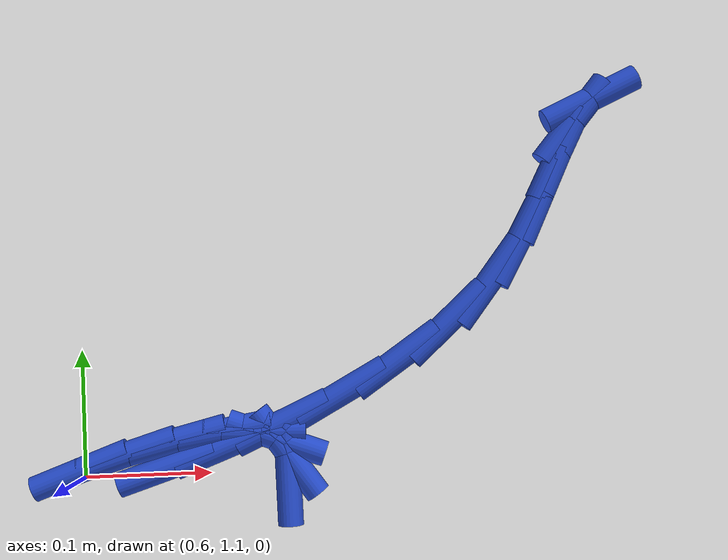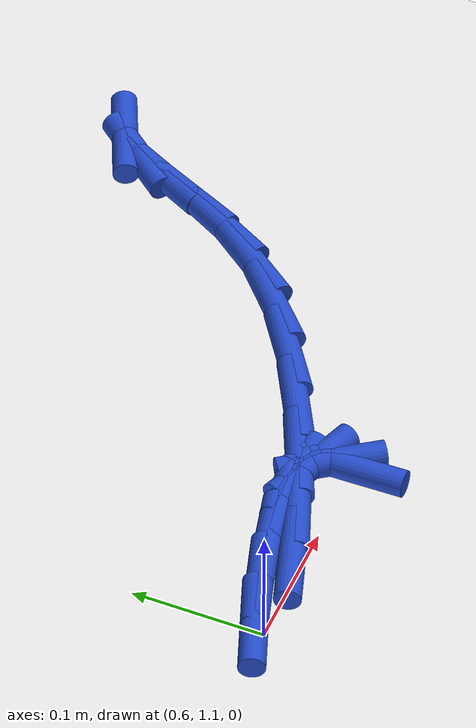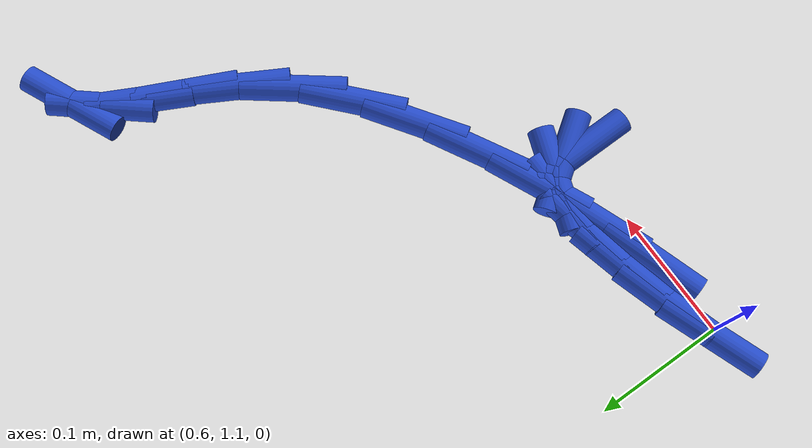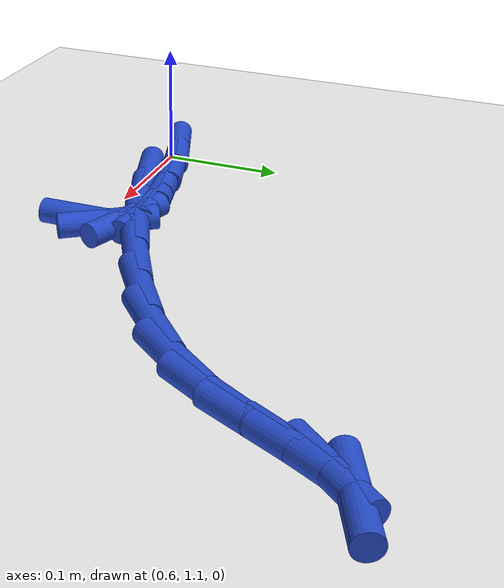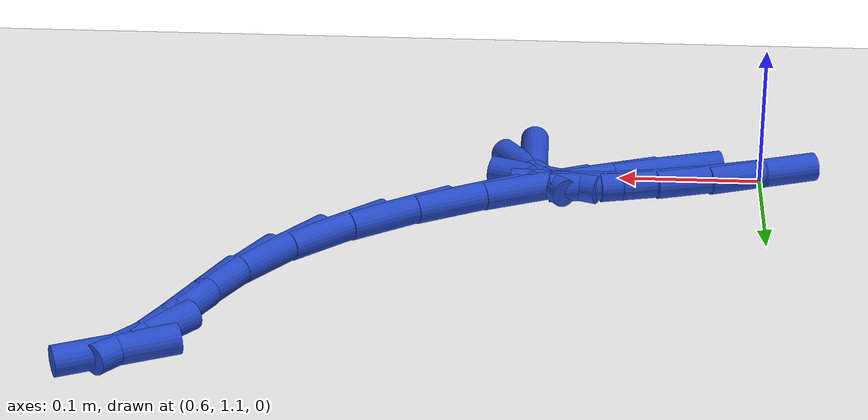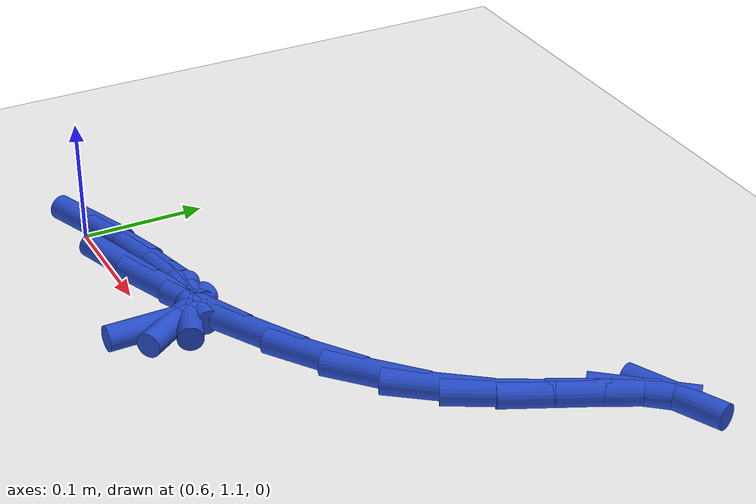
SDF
<sdf version="1.6">
 <world name="default">
  <model name="ground_plane">
   <static>1</static>
   <link name="link">
    <collision name="collision">
     <geometry><plane><normal>0 0 1</normal><size>100 100</size></plane></geometry>
     <surface><friction><ode><mu>100</mu><mu2>50</mu2></ode></friction></surface>
    </collision>
    <visual name="visual">
     <cast_shadows>0</cast_shadows>
     <geometry><plane><normal>0 0 1</normal><size>100 100</size></plane></geometry>
     <material>
      <script><uri>file://media/materials/scripts/gazebo.material</uri><name>Gazebo/WhiteGlow</name></script>
     </material>
    </visual>
   </link>
  </model>
  <model name="line">
   <link name="link_36">
    <pose>0.7609046552509291 1.0987387218680749 0.01 0 1.57 -1.5540514657367226</pose>
    <collision name="collision">
     <geometry><cylinder><radius>0.01</radius><length>0.08</length></cylinder></geometry>
    </collision>
    <visual name="visual">
     <material>
      <script><name>Gazebo/Blue</name><uri>file://media/materials/scripts/gazebo.material</uri></script>
     </material>
     <geometry><cylinder><radius>0.01</radius><length>0.08</length></cylinder></geometry>
    </visual>
   </link>
   <link name="link_37">
    <pose>0.760628027409588 1.1152573412404536 0.01 0 1.57 -0.9563449752880794</pose>
    <collision name="collision">
     <geometry><cylinder><radius>0.01</radius><length>0.08</length></cylinder></geometry>
    </collision>
    <visual name="visual">
     <material>
      <script><name>Gazebo/Blue</name><uri>file://media/materials/scripts/gazebo.material</uri></script>
     </material>
     <geometry><cylinder><radius>0.01</radius><length>0.08</length></cylinder></geometry>
    </visual>
   </link>
   <link name="link_38">
    <pose>0.7524356501726457 1.1268684231254376 0.01 0 1.57 -0.3530542364595933</pose>
    <collision name="collision">
     <geometry><cylinder><radius>0.01</radius><length>0.08</length></cylinder></geometry>
    </collision>
    <visual name="visual">
     <material>
      <script><name>Gazebo/Blue</name><uri>file://media/materials/scripts/gazebo.material</uri></script>
     </material>
     <geometry><cylinder><radius>0.01</radius><length>0.08</length></cylinder></geometry>
    </visual>
   </link>
   <link name="link_39">
    <pose>0.7356116678076605 1.1330679524387193 0.01 0 1.57 -0.010854746388954558</pose>
    <collision name="collision">
     <geometry><cylinder><radius>0.01</radius><length>0.08</length></cylinder></geometry>
    </collision>
    <visual name="visual">
     <material>
      <script><name>Gazebo/Blue</name><uri>file://media/materials/scripts/gazebo.material</uri></script>
     </material>
     <geometry><cylinder><radius>0.01</radius><length>0.08</length></cylinder></geometry>
    </visual>
   </link>
   <link name="link_40">
    <pose>0.7094405324332714 1.133352044633777 0.01 0 1.57 0.1583651510524637</pose>
    <collision name="collision">
     <geometry><cylinder><radius>0.01</radius><length>0.08</length></cylinder></geometry>
    </collision>
    <visual name="visual">
     <material>
      <script><name>Gazebo/Blue</name><uri>file://media/materials/scripts/gazebo.material</uri></script>
     </material>
     <geometry><cylinder><radius>0.01</radius><length>0.08</length></cylinder></geometry>
    </visual>
   </link>
   <link name="link_41">
    <pose>0.6745255048374678 1.1277760282832954 0.01 0 1.57 0.2416256211021858</pose>
    <collision name="collision">
     <geometry><cylinder><radius>0.01</radius><length>0.08</length></cylinder></geometry>
    </collision>
    <visual name="visual">
     <material>
      <script><name>Gazebo/Blue</name><uri>file://media/materials/scripts/gazebo.material</uri></script>
     </material>
     <geometry><cylinder><radius>0.01</radius><length>0.08</length></cylinder></geometry>
    </visual>
   </link>
   <link name="link_42">
    <pose>0.6358065200842399 1.118234107609792 0.01 0 1.57 0.29715572822820807</pose>
    <collision name="collision">
     <geometry><cylinder><radius>0.01</radius><length>0.08</length></cylinder></geometry>
    </collision>
    <visual name="visual">
     <material>
      <script><name>Gazebo/Blue</name><uri>file://media/materials/scripts/gazebo.material</uri></script>
     </material>
     <geometry><cylinder><radius>0.01</radius><length>0.08</length></cylinder></geometry>
    </visual>
   </link>
   <link name="link_43">
    <pose>0.5991135902482395 1.106997905299156 0.01 0 1.57 0.35405112781368203</pose>
    <collision name="collision">
     <geometry><cylinder><radius>0.01</radius><length>0.08</length></cylinder></geometry>
    </collision>
    <visual name="visual">
     <material>
      <script><name>Gazebo/Blue</name><uri>file://media/materials/scripts/gazebo.material</uri></script>
     </material>
     <geometry><cylinder><radius>0.01</radius><length>0.08</length></cylinder></geometry>
    </visual>
   </link>
   <link name="link_50">
    <pose>0.6663162509404124 1.1064791715887397 0.01 0 1.57 0.31459563817116315</pose>
    <collision name="collision">
     <geometry><cylinder><radius>0.01</radius><length>0.08</length></cylinder></geometry>
    </collision>
    <visual name="visual">
     <material>
      <script><name>Gazebo/Blue</name><uri>file://media/materials/scripts/gazebo.material</uri></script>
     </material>
     <geometry><cylinder><radius>0.01</radius><length>0.08</length></cylinder></geometry>
    </visual>
   </link>
   <link name="link_51">
    <pose>0.7108594166152474 1.1209736159879482 0.01 0 1.57 0.3656740829068888</pose>
    <collision name="collision">
     <geometry><cylinder><radius>0.01</radius><length>0.08</length></cylinder></geometry>
    </collision>
    <visual name="visual">
     <material>
      <script><name>Gazebo/Blue</name><uri>file://media/materials/scripts/gazebo.material</uri></script>
     </material>
     <geometry><cylinder><radius>0.01</radius><length>0.08</length></cylinder></geometry>
    </visual>
   </link>
   <link name="link_52">
    <pose>0.7576654518218182 1.138895401991948 0.01 0 1.57 0.425972506936103</pose>
    <collision name="collision">
     <geometry><cylinder><radius>0.01</radius><length>0.08</length></cylinder></geometry>
    </collision>
    <visual name="visual">
     <material>
      <script><name>Gazebo/Blue</name><uri>file://media/materials/scripts/gazebo.material</uri></script>
     </material>
     <geometry><cylinder><radius>0.01</radius><length>0.08</length></cylinder></geometry>
    </visual>
   </link>
   <link name="link_53">
    <pose>0.8045223606455906 1.1601569762612647 0.01 0 1.57 0.5016593800901276</pose>
    <collision name="collision">
     <geometry><cylinder><radius>0.01</radius><length>0.08</length></cylinder></geometry>
    </collision>
    <visual name="visual">
     <material>
      <script><name>Gazebo/Blue</name><uri>file://media/materials/scripts/gazebo.material</uri></script>
     </material>
     <geometry><cylinder><radius>0.01</radius><length>0.08</length></cylinder></geometry>
    </visual>
   </link>
   <link name="link_54">
    <pose>0.8492181471720317 1.1846707854564247 0.01 0 1.57 0.6015570599321184</pose>
    <collision name="collision">
     <geometry><cylinder><radius>0.01</radius><length>0.08</length></cylinder></geometry>
    </collision>
    <visual name="visual">
     <material>
      <script><name>Gazebo/Blue</name><uri>file://media/materials/scripts/gazebo.material</uri></script>
     </material>
     <geometry><cylinder><radius>0.01</radius><length>0.08</length></cylinder></geometry>
    </visual>
   </link>
   <link name="link_55">
    <pose>0.8895408154866081 1.2123492762379544 0.01 0 1.57 0.7391946228261188</pose>
    <collision name="collision">
     <geometry><cylinder><radius>0.01</radius><length>0.08</length></cylinder></geometry>
    </collision>
    <visual name="visual">
     <material>
      <script><name>Gazebo/Blue</name><uri>file://media/materials/scripts/gazebo.material</uri></script>
     </material>
     <geometry><cylinder><radius>0.01</radius><length>0.08</length></cylinder></geometry>
    </visual>
   </link>
   <link name="link_56">
    <pose>0.9232783696747864 1.2431048952663795 0.01 0 1.57 0.920132694141095</pose>
    <collision name="collision">
     <geometry><cylinder><radius>0.01</radius><length>0.08</length></cylinder></geometry>
    </collision>
    <visual name="visual">
     <material>
      <script><name>Gazebo/Blue</name><uri>file://media/materials/scripts/gazebo.material</uri></script>
     </material>
     <geometry><cylinder><radius>0.01</radius><length>0.08</length></cylinder></geometry>
    </visual>
   </link>
   <link name="link_57">
    <pose>0.9487313663142984 1.2765405958409337 0.01 0 1.57 1.0674545138072022</pose>
    <collision name="collision">
     <geometry><cylinder><radius>0.01</radius><length>0.08</length></cylinder></geometry>
    </collision>
    <visual name="visual">
     <material>
      <script><name>Gazebo/Blue</name><uri>file://media/materials/scripts/gazebo.material</uri></script>
     </material>
     <geometry><cylinder><radius>0.01</radius><length>0.08</length></cylinder></geometry>
    </visual>
   </link>
   <link name="link_58">
    <pose>0.9673519717356975 1.310356302184608 0.01 0 1.57 1.137068824267305</pose>
    <collision name="collision">
     <geometry><cylinder><radius>0.01</radius><length>0.08</length></cylinder></geometry>
    </collision>
    <visual name="visual">
     <material>
      <script><name>Gazebo/Blue</name><uri>file://media/materials/scripts/gazebo.material</uri></script>
     </material>
     <geometry><cylinder><radius>0.01</radius><length>0.08</length></cylinder></geometry>
    </visual>
   </link>
   <link name="link_59">
    <pose>0.9817893713539211 1.3415291453127736 0.01 0 1.57 1.1023667718908936</pose>
    <collision name="collision">
     <geometry><cylinder><radius>0.01</radius><length>0.08</length></cylinder></geometry>
    </collision>
    <visual name="visual">
     <material>
      <script><name>Gazebo/Blue</name><uri>file://media/materials/scripts/gazebo.material</uri></script>
     </material>
     <geometry><cylinder><radius>0.01</radius><length>0.08</length></cylinder></geometry>
    </visual>
   </link>
   <link name="link_60">
    <pose>0.9946950560434099 1.3670348641406338 0.01 0 1.57 0.8813371569077888</pose>
    <collision name="collision">
     <geometry><cylinder><radius>0.01</radius><length>0.08</length></cylinder></geometry>
    </collision>
    <visual name="visual">
     <material>
      <script><name>Gazebo/Blue</name><uri>file://media/materials/scripts/gazebo.material</uri></script>
     </material>
     <geometry><cylinder><radius>0.01</radius><length>0.08</length></cylinder></geometry>
    </visual>
   </link>
   <link name="link_61">
    <pose>1.0086441090595615 1.3839545529769235 0.01 0 1.57 0.43048380451970086</pose>
    <collision name="collision">
     <geometry><cylinder><radius>0.01</radius><length>0.08</length></cylinder></geometry>
    </collision>
    <visual name="visual">
     <material>
      <script><name>Gazebo/Blue</name><uri>file://media/materials/scripts/gazebo.material</uri></script>
     </material>
     <geometry><cylinder><radius>0.01</radius><length>0.08</length></cylinder></geometry>
    </visual>
   </link>
  </model>
 </world>
</sdf>
